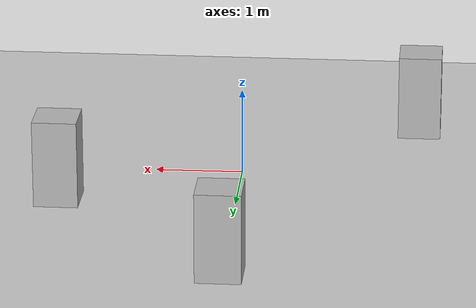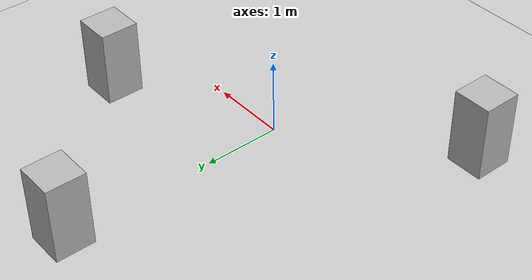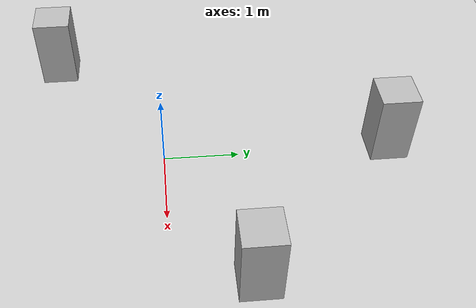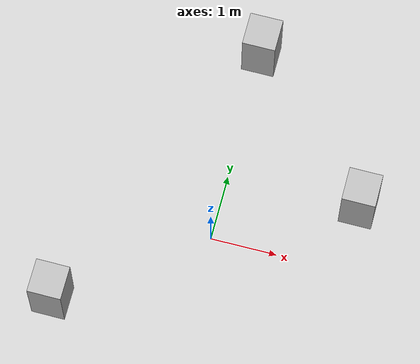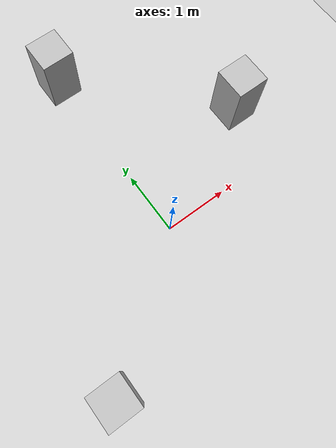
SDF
<?xml version="1.0"?>
<sdf version="1.9">
  <world name="rover_world">
    <physics name="1ms" type="ignored">
      <max_step_size>0.001</max_step_size>
      <real_time_factor>1.0</real_time_factor>
    </physics>
    <plugin filename="gz-sim-physics-system" name="gz::sim::systems::Physics"></plugin>
    <plugin filename="gz-sim-sensors-system" name="gz::sim::systems::Sensors">
      <render_engine>ogre2</render_engine>
    </plugin>
    <plugin filename="gz-sim-scene-broadcaster-system" name="gz::sim::systems::SceneBroadcaster"></plugin>
    <plugin filename="gz-sim-user-commands-system" name="gz::sim::systems::UserCommands"></plugin>

    <light type="directional" name="sun">
      <cast_shadows>true</cast_shadows>
      <pose>0 0 10 0 0 0</pose>
      <diffuse>0.8 0.8 0.8 1</diffuse>
      <direction>-0.5 0.1 -0.9</direction>
    </light>

    <model name="ground_plane">
      <static>true</static>
      <link name="link">
        <collision name="collision">
          <geometry><plane><normal>0 0 1</normal><size>20 20</size></plane></geometry>
        </collision>
        <visual name="visual">
          <geometry><plane><normal>0 0 1</normal><size>20 20</size></plane></geometry>
        </visual>
      </link>
    </model>

    <model name="box1">
      <static>true</static>
      <pose>2 1 0.5 0 0 0</pose>
      <link name="link">
        <collision name="c"><geometry><box><size>0.5 0.5 1</size></box></geometry></collision>
        <visual name="v"><geometry><box><size>0.5 0.5 1</size></box></geometry></visual>
      </link>
    </model>
    <model name="box2">
      <static>true</static>
      <pose>-2 -1.5 0.5 0 0 0</pose>
      <link name="link">
        <collision name="c"><geometry><box><size>0.5 0.5 1</size></box></geometry></collision>
        <visual name="v"><geometry><box><size>0.5 0.5 1</size></box></geometry></visual>
      </link>
    </model>
    <model name="box3">
      <static>true</static>
      <pose>0 3 0.5 0 0 0</pose>
      <link name="link">
        <collision name="c"><geometry><box><size>0.5 0.5 1</size></box></geometry></collision>
        <visual name="v"><geometry><box><size>0.5 0.5 1</size></box></geometry></visual>
      </link>
    </model>
  </world>
</sdf>
